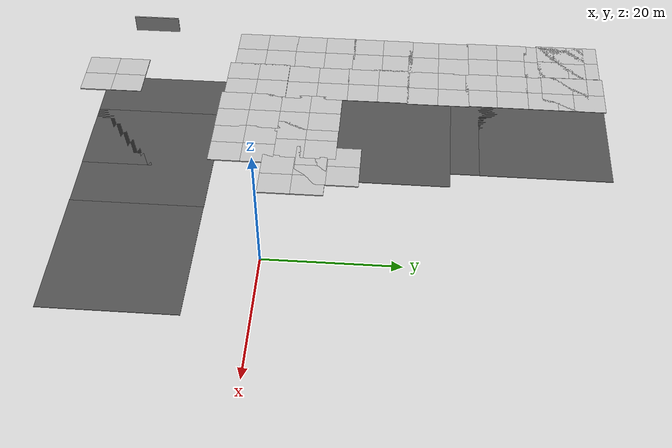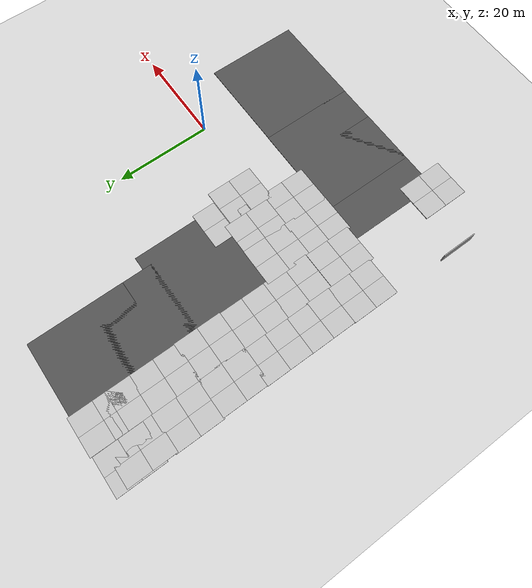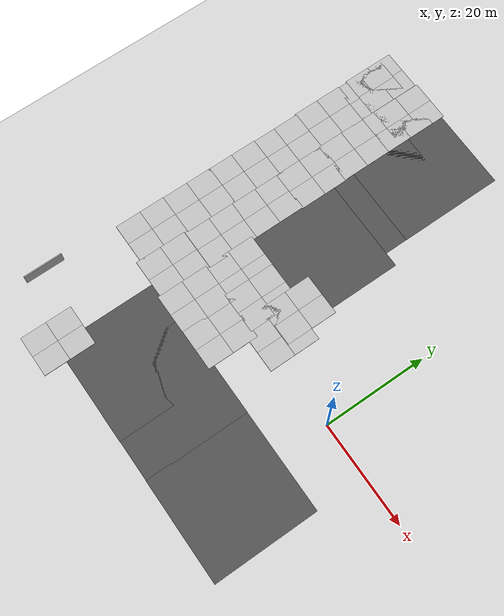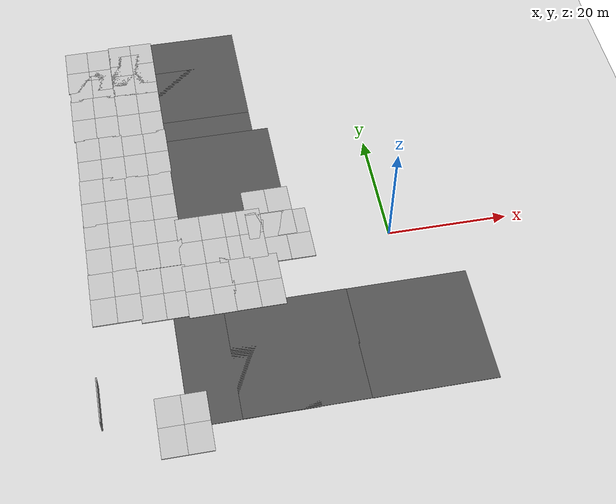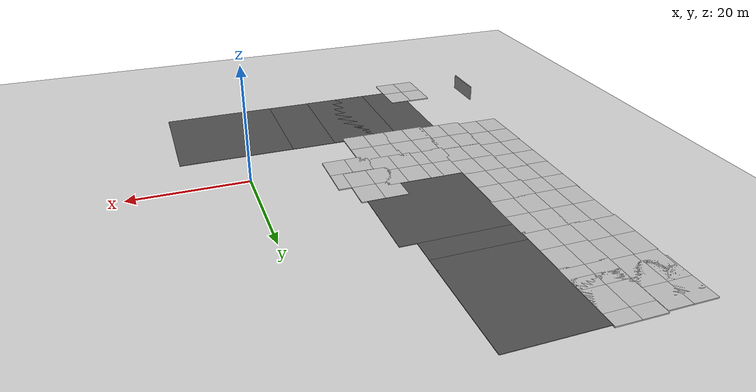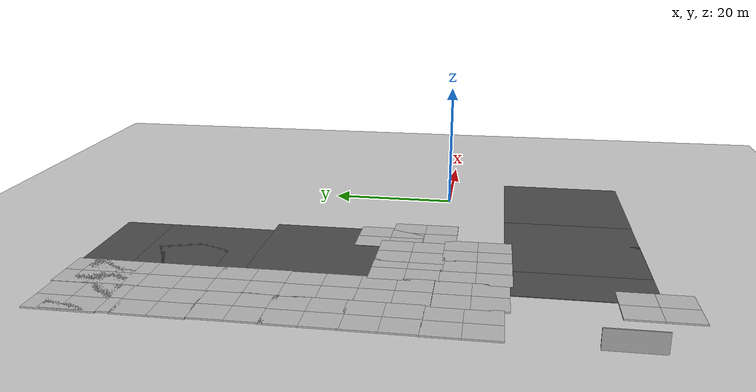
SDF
<sdf version="1.6">
 <world name="default">
  <model name="ground_plane">
   <static>1</static>
   <link name="link">
    <collision name="collision">
     <geometry><plane><normal>0 0 1</normal><size>100 100</size></plane></geometry>
     <surface><friction><ode><mu>100</mu><mu2>50</mu2></ode></friction></surface>
    </collision>
    <visual name="visual">
     <cast_shadows>0</cast_shadows>
     <geometry><plane><normal>0 0 1</normal><size>100 100</size></plane></geometry>
     <material>
      <script><uri>file://media/materials/scripts/gazebo.material</uri><name>Gazebo/Grey</name></script>
     </material>
    </visual>
   </link>
  </model>
  <model name="asphalt_plane">
   <static>1</static>
   <link name="link">
    <collision name="collision"><geometry><box><size>20 20 0.1</size></box></geometry></collision>
    <visual name="visual">
     <cast_shadows>0</cast_shadows>
     <geometry><box><size>20 20 0.1</size></box></geometry>
     <material>
      <script>
       <uri>model://asphalt_plane/materials/scripts</uri>
       <uri>model://asphalt_plane/materials/textures</uri>
       <name>vrc/asphalt</name>
      </script>
     </material>
    </visual>
   </link>
   <pose>0.46329 -19.4958 0 0 -0 0</pose>
  </model>
  <model name="asphalt_plane_0">
   <static>1</static>
   <link name="link">
    <collision name="collision"><geometry><box><size>20 20 0.1</size></box></geometry></collision>
    <visual name="visual">
     <cast_shadows>0</cast_shadows>
     <geometry><box><size>20 20 0.1</size></box></geometry>
     <material>
      <script>
       <uri>model://asphalt_plane/materials/scripts</uri>
       <uri>model://asphalt_plane/materials/textures</uri>
       <name>vrc/asphalt</name>
      </script>
     </material>
    </visual>
   </link>
   <pose>-19.3509 -19.4595 0 0 -0 0</pose>
  </model>
  <model name="asphalt_plane_2">
   <static>1</static>
   <link name="link">
    <collision name="collision"><geometry><box><size>20 20 0.1</size></box></geometry></collision>
    <visual name="visual">
     <cast_shadows>0</cast_shadows>
     <geometry><box><size>20 20 0.1</size></box></geometry>
     <material>
      <script>
       <uri>model://asphalt_plane/materials/scripts</uri>
       <uri>model://asphalt_plane/materials/textures</uri>
       <name>vrc/asphalt</name>
      </script>
     </material>
    </visual>
   </link>
   <pose>-27.35 -19.5085 0 0 -0 0</pose>
  </model>
  <model name="mud_box_2_clone_7">
   <static>1</static>
   <link name="link">
    <collision name="collision"><geometry><box><size>8 10 0.2</size></box></geometry></collision>
    <visual name="visual_1">
     <pose>-2 2.5 0 0 -0 0</pose>
     <cast_shadows>0</cast_shadows>
     <geometry><box><size>4 5 0.2</size></box></geometry>
     <material>
      <script>
       <uri>model://mud_box/materials/scripts</uri>
       <uri>model://mud_box/materials/textures</uri>
       <name>vrc/mud</name>
      </script>
     </material>
    </visual>
    <visual name="visual_2">
     <pose>2 2.5 0 0 -0 0</pose>
     <cast_shadows>0</cast_shadows>
     <geometry><box><size>4 5 0.2</size></box></geometry>
     <material>
      <script>
       <uri>model://mud_box/materials/scripts</uri>
       <uri>model://mud_box/materials/textures</uri>
       <name>vrc/mud</name>
      </script>
     </material>
    </visual>
    <visual name="visual_3">
     <pose>2 -2.5 0 0 -0 0</pose>
     <cast_shadows>0</cast_shadows>
     <geometry><box><size>4 5 0.2</size></box></geometry>
     <material>
      <script>
       <uri>model://mud_box/materials/scripts</uri>
       <uri>model://mud_box/materials/textures</uri>
       <name>vrc/mud</name>
      </script>
     </material>
    </visual>
    <visual name="visual_4">
     <pose>-2 -2.5 0 0 -0 0</pose>
     <cast_shadows>0</cast_shadows>
     <geometry><box><size>4 5 0.2</size></box></geometry>
     <material>
      <script>
       <uri>model://mud_box/materials/scripts</uri>
       <uri>model://mud_box/materials/textures</uri>
       <name>vrc/mud</name>
      </script>
     </material>
    </visual>
   </link>
   <pose>-38.0475 -28.7942 0 0 -0 0</pose>
  </model>
  <model name="mud_box_2_clone_16">
   <static>1</static>
   <link name="link">
    <collision name="collision"><geometry><box><size>8 10 0.2</size></box></geometry></collision>
    <visual name="visual_1">
     <pose>-2 2.5 0 0 -0 0</pose>
     <cast_shadows>0</cast_shadows>
     <geometry><box><size>4 5 0.2</size></box></geometry>
     <material>
      <script>
       <uri>model://mud_box/materials/scripts</uri>
       <uri>model://mud_box/materials/textures</uri>
       <name>vrc/mud</name>
      </script>
     </material>
    </visual>
    <visual name="visual_2">
     <pose>2 2.5 0 0 -0 0</pose>
     <cast_shadows>0</cast_shadows>
     <geometry><box><size>4 5 0.2</size></box></geometry>
     <material>
      <script>
       <uri>model://mud_box/materials/scripts</uri>
       <uri>model://mud_box/materials/textures</uri>
       <name>vrc/mud</name>
      </script>
     </material>
    </visual>
    <visual name="visual_3">
     <pose>2 -2.5 0 0 -0 0</pose>
     <cast_shadows>0</cast_shadows>
     <geometry><box><size>4 5 0.2</size></box></geometry>
     <material>
      <script>
       <uri>model://mud_box/materials/scripts</uri>
       <uri>model://mud_box/materials/textures</uri>
       <name>vrc/mud</name>
      </script>
     </material>
    </visual>
    <visual name="visual_4">
     <pose>-2 -2.5 0 0 -0 0</pose>
     <cast_shadows>0</cast_shadows>
     <geometry><box><size>4 5 0.2</size></box></geometry>
     <material>
      <script>
       <uri>model://mud_box/materials/scripts</uri>
       <uri>model://mud_box/materials/textures</uri>
       <name>vrc/mud</name>
      </script>
     </material>
    </visual>
   </link>
   <pose>-23.1666 -5.5652 0 0 -0 0</pose>
  </model>
  <model name="mud_box_5">
   <static>1</static>
   <link name="link">
    <collision name="collision"><geometry><box><size>8 10 0.2</size></box></geometry></collision>
    <visual name="visual_1">
     <pose>-2 2.5 0 0 -0 0</pose>
     <cast_shadows>0</cast_shadows>
     <geometry><box><size>4 5 0.2</size></box></geometry>
     <material>
      <script>
       <uri>model://mud_box/materials/scripts</uri>
       <uri>model://mud_box/materials/textures</uri>
       <name>vrc/mud</name>
      </script>
     </material>
    </visual>
    <visual name="visual_2">
     <pose>2 2.5 0 0 -0 0</pose>
     <cast_shadows>0</cast_shadows>
     <geometry><box><size>4 5 0.2</size></box></geometry>
     <material>
      <script>
       <uri>model://mud_box/materials/scripts</uri>
       <uri>model://mud_box/materials/textures</uri>
       <name>vrc/mud</name>
      </script>
     </material>
    </visual>
    <visual name="visual_3">
     <pose>2 -2.5 0 0 -0 0</pose>
     <cast_shadows>0</cast_shadows>
     <geometry><box><size>4 5 0.2</size></box></geometry>
     <material>
      <script>
       <uri>model://mud_box/materials/scripts</uri>
       <uri>model://mud_box/materials/textures</uri>
       <name>vrc/mud</name>
      </script>
     </material>
    </visual>
    <visual name="visual_4">
     <pose>-2 -2.5 0 0 -0 0</pose>
     <cast_shadows>0</cast_shadows>
     <geometry><box><size>4 5 0.2</size></box></geometry>
     <material>
      <script>
       <uri>model://mud_box/materials/scripts</uri>
       <uri>model://mud_box/materials/textures</uri>
       <name>vrc/mud</name>
      </script>
     </material>
    </visual>
   </link>
   <pose>-30.8349 -5.5936 0 0 -0 0</pose>
  </model>
  <model name="mud_box_5_clone">
   <static>1</static>
   <link name="link">
    <collision name="collision"><geometry><box><size>8 10 0.2</size></box></geometry></collision>
    <visual name="visual_1">
     <pose>-2 2.5 0 0 -0 0</pose>
     <cast_shadows>0</cast_shadows>
     <geometry><box><size>4 5 0.2</size></box></geometry>
     <material>
      <script>
       <uri>model://mud_box/materials/scripts</uri>
       <uri>model://mud_box/materials/textures</uri>
       <name>vrc/mud</name>
      </script>
     </material>
    </visual>
    <visual name="visual_2">
     <pose>2 2.5 0 0 -0 0</pose>
     <cast_shadows>0</cast_shadows>
     <geometry><box><size>4 5 0.2</size></box></geometry>
     <material>
      <script>
       <uri>model://mud_box/materials/scripts</uri>
       <uri>model://mud_box/materials/textures</uri>
       <name>vrc/mud</name>
      </script>
     </material>
    </visual>
    <visual name="visual_3">
     <pose>2 -2.5 0 0 -0 0</pose>
     <cast_shadows>0</cast_shadows>
     <geometry><box><size>4 5 0.2</size></box></geometry>
     <material>
      <script>
       <uri>model://mud_box/materials/scripts</uri>
       <uri>model://mud_box/materials/textures</uri>
       <name>vrc/mud</name>
      </script>
     </material>
    </visual>
    <visual name="visual_4">
     <pose>-2 -2.5 0 0 -0 0</pose>
     <cast_shadows>0</cast_shadows>
     <geometry><box><size>4 5 0.2</size></box></geometry>
     <material>
      <script>
       <uri>model://mud_box/materials/scripts</uri>
       <uri>model://mud_box/materials/textures</uri>
       <name>vrc/mud</name>
      </script>
     </material>
    </visual>
   </link>
   <pose>-38.3325 -5.17466 0 0 -0 0</pose>
  </model>
  <model name="mud_box_5_clone_0">
   <static>1</static>
   <link name="link">
    <collision name="collision"><geometry><box><size>8 10 0.2</size></box></geometry></collision>
    <visual name="visual_1">
     <pose>-2 2.5 0 0 -0 0</pose>
     <cast_shadows>0</cast_shadows>
     <geometry><box><size>4 5 0.2</size></box></geometry>
     <material>
      <script>
       <uri>model://mud_box/materials/scripts</uri>
       <uri>model://mud_box/materials/textures</uri>
       <name>vrc/mud</name>
      </script>
     </material>
    </visual>
    <visual name="visual_2">
     <pose>2 2.5 0 0 -0 0</pose>
     <cast_shadows>0</cast_shadows>
     <geometry><box><size>4 5 0.2</size></box></geometry>
     <material>
      <script>
       <uri>model://mud_box/materials/scripts</uri>
       <uri>model://mud_box/materials/textures</uri>
       <name>vrc/mud</name>
      </script>
     </material>
    </visual>
    <visual name="visual_3">
     <pose>2 -2.5 0 0 -0 0</pose>
     <cast_shadows>0</cast_shadows>
     <geometry><box><size>4 5 0.2</size></box></geometry>
     <material>
      <script>
       <uri>model://mud_box/materials/scripts</uri>
       <uri>model://mud_box/materials/textures</uri>
       <name>vrc/mud</name>
      </script>
     </material>
    </visual>
    <visual name="visual_4">
     <pose>-2 -2.5 0 0 -0 0</pose>
     <cast_shadows>0</cast_shadows>
     <geometry><box><size>4 5 0.2</size></box></geometry>
     <material>
      <script>
       <uri>model://mud_box/materials/scripts</uri>
       <uri>model://mud_box/materials/textures</uri>
       <name>vrc/mud</name>
      </script>
     </material>
    </visual>
   </link>
   <pose>-46.0429 -4.43965 0 0 -0 0</pose>
  </model>
  <model name="mud_box_5_clone_1">
   <static>1</static>
   <link name="link">
    <collision name="collision"><geometry><box><size>8 10 0.2</size></box></geometry></collision>
    <visual name="visual_1">
     <pose>-2 2.5 0 0 -0 0</pose>
     <cast_shadows>0</cast_shadows>
     <geometry><box><size>4 5 0.2</size></box></geometry>
     <material>
      <script>
       <uri>model://mud_box/materials/scripts</uri>
       <uri>model://mud_box/materials/textures</uri>
       <name>vrc/mud</name>
      </script>
     </material>
    </visual>
    <visual name="visual_2">
     <pose>2 2.5 0 0 -0 0</pose>
     <cast_shadows>0</cast_shadows>
     <geometry><box><size>4 5 0.2</size></box></geometry>
     <material>
      <script>
       <uri>model://mud_box/materials/scripts</uri>
       <uri>model://mud_box/materials/textures</uri>
       <name>vrc/mud</name>
      </script>
     </material>
    </visual>
    <visual name="visual_3">
     <pose>2 -2.5 0 0 -0 0</pose>
     <cast_shadows>0</cast_shadows>
     <geometry><box><size>4 5 0.2</size></box></geometry>
     <material>
      <script>
       <uri>model://mud_box/materials/scripts</uri>
       <uri>model://mud_box/materials/textures</uri>
       <name>vrc/mud</name>
      </script>
     </material>
    </visual>
    <visual name="visual_4">
     <pose>-2 -2.5 0 0 -0 0</pose>
     <cast_shadows>0</cast_shadows>
     <geometry><box><size>4 5 0.2</size></box></geometry>
     <material>
      <script>
       <uri>model://mud_box/materials/scripts</uri>
       <uri>model://mud_box/materials/textures</uri>
       <name>vrc/mud</name>
      </script>
     </material>
    </visual>
   </link>
   <pose>-45.9576 5.44414 0 0 -0 0</pose>
  </model>
  <model name="mud_box_5_clone_2">
   <static>1</static>
   <link name="link">
    <collision name="collision"><geometry><box><size>8 10 0.2</size></box></geometry></collision>
    <visual name="visual_1">
     <pose>-2 2.5 0 0 -0 0</pose>
     <cast_shadows>0</cast_shadows>
     <geometry><box><size>4 5 0.2</size></box></geometry>
     <material>
      <script>
       <uri>model://mud_box/materials/scripts</uri>
       <uri>model://mud_box/materials/textures</uri>
       <name>vrc/mud</name>
      </script>
     </material>
    </visual>
    <visual name="visual_2">
     <pose>2 2.5 0 0 -0 0</pose>
     <cast_shadows>0</cast_shadows>
     <geometry><box><size>4 5 0.2</size></box></geometry>
     <material>
      <script>
       <uri>model://mud_box/materials/scripts</uri>
       <uri>model://mud_box/materials/textures</uri>
       <name>vrc/mud</name>
      </script>
     </material>
    </visual>
    <visual name="visual_3">
     <pose>2 -2.5 0 0 -0 0</pose>
     <cast_shadows>0</cast_shadows>
     <geometry><box><size>4 5 0.2</size></box></geometry>
     <material>
      <script>
       <uri>model://mud_box/materials/scripts</uri>
       <uri>model://mud_box/materials/textures</uri>
       <name>vrc/mud</name>
      </script>
     </material>
    </visual>
    <visual name="visual_4">
     <pose>-2 -2.5 0 0 -0 0</pose>
     <cast_shadows>0</cast_shadows>
     <geometry><box><size>4 5 0.2</size></box></geometry>
     <material>
      <script>
       <uri>model://mud_box/materials/scripts</uri>
       <uri>model://mud_box/materials/textures</uri>
       <name>vrc/mud</name>
      </script>
     </material>
    </visual>
   </link>
   <pose>-38.1608 4.8659 0 0 -0 0</pose>
  </model>
  <model name="mud_box_5_clone_3">
   <static>1</static>
   <link name="link">
    <collision name="collision"><geometry><box><size>8 10 0.2</size></box></geometry></collision>
    <visual name="visual_1">
     <pose>-2 2.5 0 0 -0 0</pose>
     <cast_shadows>0</cast_shadows>
     <geometry><box><size>4 5 0.2</size></box></geometry>
     <material>
      <script>
       <uri>model://mud_box/materials/scripts</uri>
       <uri>model://mud_box/materials/textures</uri>
       <name>vrc/mud</name>
      </script>
     </material>
    </visual>
    <visual name="visual_2">
     <pose>2 2.5 0 0 -0 0</pose>
     <cast_shadows>0</cast_shadows>
     <geometry><box><size>4 5 0.2</size></box></geometry>
     <material>
      <script>
       <uri>model://mud_box/materials/scripts</uri>
       <uri>model://mud_box/materials/textures</uri>
       <name>vrc/mud</name>
      </script>
     </material>
    </visual>
    <visual name="visual_3">
     <pose>2 -2.5 0 0 -0 0</pose>
     <cast_shadows>0</cast_shadows>
     <geometry><box><size>4 5 0.2</size></box></geometry>
     <material>
      <script>
       <uri>model://mud_box/materials/scripts</uri>
       <uri>model://mud_box/materials/textures</uri>
       <name>vrc/mud</name>
      </script>
     </material>
    </visual>
    <visual name="visual_4">
     <pose>-2 -2.5 0 0 -0 0</pose>
     <cast_shadows>0</cast_shadows>
     <geometry><box><size>4 5 0.2</size></box></geometry>
     <material>
      <script>
       <uri>model://mud_box/materials/scripts</uri>
       <uri>model://mud_box/materials/textures</uri>
       <name>vrc/mud</name>
      </script>
     </material>
    </visual>
   </link>
   <pose>-30.8215 4.10783 0 0 -0 0</pose>
  </model>
  <model name="mud_box_5_clone_4">
   <static>1</static>
   <link name="link">
    <collision name="collision"><geometry><box><size>8 10 0.2</size></box></geometry></collision>
    <visual name="visual_1">
     <pose>-2 2.5 0 0 -0 0</pose>
     <cast_shadows>0</cast_shadows>
     <geometry><box><size>4 5 0.2</size></box></geometry>
     <material>
      <script>
       <uri>model://mud_box/materials/scripts</uri>
       <uri>model://mud_box/materials/textures</uri>
       <name>vrc/mud</name>
      </script>
     </material>
    </visual>
    <visual name="visual_2">
     <pose>2 2.5 0 0 -0 0</pose>
     <cast_shadows>0</cast_shadows>
     <geometry><box><size>4 5 0.2</size></box></geometry>
     <material>
      <script>
       <uri>model://mud_box/materials/scripts</uri>
       <uri>model://mud_box/materials/textures</uri>
       <name>vrc/mud</name>
      </script>
     </material>
    </visual>
    <visual name="visual_3">
     <pose>2 -2.5 0 0 -0 0</pose>
     <cast_shadows>0</cast_shadows>
     <geometry><box><size>4 5 0.2</size></box></geometry>
     <material>
      <script>
       <uri>model://mud_box/materials/scripts</uri>
       <uri>model://mud_box/materials/textures</uri>
       <name>vrc/mud</name>
      </script>
     </material>
    </visual>
    <visual name="visual_4">
     <pose>-2 -2.5 0 0 -0 0</pose>
     <cast_shadows>0</cast_shadows>
     <geometry><box><size>4 5 0.2</size></box></geometry>
     <material>
      <script>
       <uri>model://mud_box/materials/scripts</uri>
       <uri>model://mud_box/materials/textures</uri>
       <name>vrc/mud</name>
      </script>
     </material>
    </visual>
   </link>
   <pose>-24.5157 4.05379 0 0 -0 0</pose>
  </model>
  <model name="mud_box_5_clone_1_clone">
   <static>1</static>
   <link name="link">
    <collision name="collision"><geometry><box><size>8 10 0.2</size></box></geometry></collision>
    <visual name="visual_1">
     <pose>-2 2.5 0 0 -0 0</pose>
     <cast_shadows>0</cast_shadows>
     <geometry><box><size>4 5 0.2</size></box></geometry>
     <material>
      <script>
       <uri>model://mud_box/materials/scripts</uri>
       <uri>model://mud_box/materials/textures</uri>
       <name>vrc/mud</name>
      </script>
     </material>
    </visual>
    <visual name="visual_2">
     <pose>2 2.5 0 0 -0 0</pose>
     <cast_shadows>0</cast_shadows>
     <geometry><box><size>4 5 0.2</size></box></geometry>
     <material>
      <script>
       <uri>model://mud_box/materials/scripts</uri>
       <uri>model://mud_box/materials/textures</uri>
       <name>vrc/mud</name>
      </script>
     </material>
    </visual>
    <visual name="visual_3">
     <pose>2 -2.5 0 0 -0 0</pose>
     <cast_shadows>0</cast_shadows>
     <geometry><box><size>4 5 0.2</size></box></geometry>
     <material>
      <script>
       <uri>model://mud_box/materials/scripts</uri>
       <uri>model://mud_box/materials/textures</uri>
       <name>vrc/mud</name>
      </script>
     </material>
    </visual>
    <visual name="visual_4">
     <pose>-2 -2.5 0 0 -0 0</pose>
     <cast_shadows>0</cast_shadows>
     <geometry><box><size>4 5 0.2</size></box></geometry>
     <material>
      <script>
       <uri>model://mud_box/materials/scripts</uri>
       <uri>model://mud_box/materials/textures</uri>
       <name>vrc/mud</name>
      </script>
     </material>
    </visual>
   </link>
   <pose>-45.9289 15.1657 0 0 -0 0</pose>
  </model>
  <model name="mud_box_5_clone_1_clone_0">
   <static>1</static>
   <link name="link">
    <collision name="collision"><geometry><box><size>8 10 0.2</size></box></geometry></collision>
    <visual name="visual_1">
     <pose>-2 2.5 0 0 -0 0</pose>
     <cast_shadows>0</cast_shadows>
     <geometry><box><size>4 5 0.2</size></box></geometry>
     <material>
      <script>
       <uri>model://mud_box/materials/scripts</uri>
       <uri>model://mud_box/materials/textures</uri>
       <name>vrc/mud</name>
      </script>
     </material>
    </visual>
    <visual name="visual_2">
     <pose>2 2.5 0 0 -0 0</pose>
     <cast_shadows>0</cast_shadows>
     <geometry><box><size>4 5 0.2</size></box></geometry>
     <material>
      <script>
       <uri>model://mud_box/materials/scripts</uri>
       <uri>model://mud_box/materials/textures</uri>
       <name>vrc/mud</name>
      </script>
     </material>
    </visual>
    <visual name="visual_3">
     <pose>2 -2.5 0 0 -0 0</pose>
     <cast_shadows>0</cast_shadows>
     <geometry><box><size>4 5 0.2</size></box></geometry>
     <material>
      <script>
       <uri>model://mud_box/materials/scripts</uri>
       <uri>model://mud_box/materials/textures</uri>
       <name>vrc/mud</name>
      </script>
     </material>
    </visual>
    <visual name="visual_4">
     <pose>-2 -2.5 0 0 -0 0</pose>
     <cast_shadows>0</cast_shadows>
     <geometry><box><size>4 5 0.2</size></box></geometry>
     <material>
      <script>
       <uri>model://mud_box/materials/scripts</uri>
       <uri>model://mud_box/materials/textures</uri>
       <name>vrc/mud</name>
      </script>
     </material>
    </visual>
   </link>
   <pose>-38.1705 14.7563 0 0 -0 0</pose>
  </model>
  <model name="mud_box_5_clone_1_clone_1">
   <static>1</static>
   <link name="link">
    <collision name="collision"><geometry><box><size>8 10 0.2</size></box></geometry></collision>
    <visual name="visual_1">
     <pose>-2 2.5 0 0 -0 0</pose>
     <cast_shadows>0</cast_shadows>
     <geometry><box><size>4 5 0.2</size></box></geometry>
     <material>
      <script>
       <uri>model://mud_box/materials/scripts</uri>
       <uri>model://mud_box/materials/textures</uri>
       <name>vrc/mud</name>
      </script>
     </material>
    </visual>
    <visual name="visual_2">
     <pose>2 2.5 0 0 -0 0</pose>
     <cast_shadows>0</cast_shadows>
     <geometry><box><size>4 5 0.2</size></box></geometry>
     <material>
      <script>
       <uri>model://mud_box/materials/scripts</uri>
       <uri>model://mud_box/materials/textures</uri>
       <name>vrc/mud</name>
      </script>
     </material>
    </visual>
    <visual name="visual_3">
     <pose>2 -2.5 0 0 -0 0</pose>
     <cast_shadows>0</cast_shadows>
     <geometry><box><size>4 5 0.2</size></box></geometry>
     <material>
      <script>
       <uri>model://mud_box/materials/scripts</uri>
       <uri>model://mud_box/materials/textures</uri>
       <name>vrc/mud</name>
      </script>
     </material>
    </visual>
    <visual name="visual_4">
     <pose>-2 -2.5 0 0 -0 0</pose>
     <cast_shadows>0</cast_shadows>
     <geometry><box><size>4 5 0.2</size></box></geometry>
     <material>
      <script>
       <uri>model://mud_box/materials/scripts</uri>
       <uri>model://mud_box/materials/textures</uri>
       <name>vrc/mud</name>
      </script>
     </material>
    </visual>
   </link>
   <pose>-38.0105 24.5085 0 0 -0 0</pose>
  </model>
  <model name="mud_box_5_clone_1_clone_2">
   <static>1</static>
   <link name="link">
    <collision name="collision"><geometry><box><size>8 10 0.2</size></box></geometry></collision>
    <visual name="visual_1">
     <pose>-2 2.5 0 0 -0 0</pose>
     <cast_shadows>0</cast_shadows>
     <geometry><box><size>4 5 0.2</size></box></geometry>
     <material>
      <script>
       <uri>model://mud_box/materials/scripts</uri>
       <uri>model://mud_box/materials/textures</uri>
       <name>vrc/mud</name>
      </script>
     </material>
    </visual>
    <visual name="visual_2">
     <pose>2 2.5 0 0 -0 0</pose>
     <cast_shadows>0</cast_shadows>
     <geometry><box><size>4 5 0.2</size></box></geometry>
     <material>
      <script>
       <uri>model://mud_box/materials/scripts</uri>
       <uri>model://mud_box/materials/textures</uri>
       <name>vrc/mud</name>
      </script>
     </material>
    </visual>
    <visual name="visual_3">
     <pose>2 -2.5 0 0 -0 0</pose>
     <cast_shadows>0</cast_shadows>
     <geometry><box><size>4 5 0.2</size></box></geometry>
     <material>
      <script>
       <uri>model://mud_box/materials/scripts</uri>
       <uri>model://mud_box/materials/textures</uri>
       <name>vrc/mud</name>
      </script>
     </material>
    </visual>
    <visual name="visual_4">
     <pose>-2 -2.5 0 0 -0 0</pose>
     <cast_shadows>0</cast_shadows>
     <geometry><box><size>4 5 0.2</size></box></geometry>
     <material>
      <script>
       <uri>model://mud_box/materials/scripts</uri>
       <uri>model://mud_box/materials/textures</uri>
       <name>vrc/mud</name>
      </script>
     </material>
    </visual>
   </link>
   <pose>-45.8143 24.5123 0 0 -0 0</pose>
  </model>
  <model name="mud_box_5_clone_1_clone_3">
   <static>1</static>
   <link name="link">
    <collision name="collision"><geometry><box><size>8 10 0.2</size></box></geometry></collision>
    <visual name="visual_1">
     <pose>-2 2.5 0 0 -0 0</pose>
     <cast_shadows>0</cast_shadows>
     <geometry><box><size>4 5 0.2</size></box></geometry>
     <material>
      <script>
       <uri>model://mud_box/materials/scripts</uri>
       <uri>model://mud_box/materials/textures</uri>
       <name>vrc/mud</name>
      </script>
     </material>
    </visual>
    <visual name="visual_2">
     <pose>2 2.5 0 0 -0 0</pose>
     <cast_shadows>0</cast_shadows>
     <geometry><box><size>4 5 0.2</size></box></geometry>
     <material>
      <script>
       <uri>model://mud_box/materials/scripts</uri>
       <uri>model://mud_box/materials/textures</uri>
       <name>vrc/mud</name>
      </script>
     </material>
    </visual>
    <visual name="visual_3">
     <pose>2 -2.5 0 0 -0 0</pose>
     <cast_shadows>0</cast_shadows>
     <geometry><box><size>4 5 0.2</size></box></geometry>
     <material>
      <script>
       <uri>model://mud_box/materials/scripts</uri>
       <uri>model://mud_box/materials/textures</uri>
       <name>vrc/mud</name>
      </script>
     </material>
    </visual>
    <visual name="visual_4">
     <pose>-2 -2.5 0 0 -0 0</pose>
     <cast_shadows>0</cast_shadows>
     <geometry><box><size>4 5 0.2</size></box></geometry>
     <material>
      <script>
       <uri>model://mud_box/materials/scripts</uri>
       <uri>model://mud_box/materials/textures</uri>
       <name>vrc/mud</name>
      </script>
     </material>
    </visual>
   </link>
   <pose>-46.0438 34.2972 0 0 -0 0</pose>
  </model>
  <model name="mud_box_5_clone_1_clone_4">
   <static>1</static>
   <link name="link">
    <collision name="collision"><geometry><box><size>8 10 0.2</size></box></geometry></collision>
    <visual name="visual_1">
     <pose>-2 2.5 0 0 -0 0</pose>
     <cast_shadows>0</cast_shadows>
     <geometry><box><size>4 5 0.2</size></box></geometry>
     <material>
      <script>
       <uri>model://mud_box/materials/scripts</uri>
       <uri>model://mud_box/materials/textures</uri>
       <name>vrc/mud</name>
      </script>
     </material>
    </visual>
    <visual name="visual_2">
     <pose>2 2.5 0 0 -0 0</pose>
     <cast_shadows>0</cast_shadows>
     <geometry><box><size>4 5 0.2</size></box></geometry>
     <material>
      <script>
       <uri>model://mud_box/materials/scripts</uri>
       <uri>model://mud_box/materials/textures</uri>
       <name>vrc/mud</name>
      </script>
     </material>
    </visual>
    <visual name="visual_3">
     <pose>2 -2.5 0 0 -0 0</pose>
     <cast_shadows>0</cast_shadows>
     <geometry><box><size>4 5 0.2</size></box></geometry>
     <material>
      <script>
       <uri>model://mud_box/materials/scripts</uri>
       <uri>model://mud_box/materials/textures</uri>
       <name>vrc/mud</name>
      </script>
     </material>
    </visual>
    <visual name="visual_4">
     <pose>-2 -2.5 0 0 -0 0</pose>
     <cast_shadows>0</cast_shadows>
     <geometry><box><size>4 5 0.2</size></box></geometry>
     <material>
      <script>
       <uri>model://mud_box/materials/scripts</uri>
       <uri>model://mud_box/materials/textures</uri>
       <name>vrc/mud</name>
      </script>
     </material>
    </visual>
   </link>
   <pose>-38.1404 34.0458 0 0 -0 0</pose>
  </model>
  <model name="mud_box_5_clone_1_clone_5">
   <static>1</static>
   <link name="link">
    <collision name="collision"><geometry><box><size>8 10 0.2</size></box></geometry></collision>
    <visual name="visual_1">
     <pose>-2 2.5 0 0 -0 0</pose>
     <cast_shadows>0</cast_shadows>
     <geometry><box><size>4 5 0.2</size></box></geometry>
     <material>
      <script>
       <uri>model://mud_box/materials/scripts</uri>
       <uri>model://mud_box/materials/textures</uri>
       <name>vrc/mud</name>
      </script>
     </material>
    </visual>
    <visual name="visual_2">
     <pose>2 2.5 0 0 -0 0</pose>
     <cast_shadows>0</cast_shadows>
     <geometry><box><size>4 5 0.2</size></box></geometry>
     <material>
      <script>
       <uri>model://mud_box/materials/scripts</uri>
       <uri>model://mud_box/materials/textures</uri>
       <name>vrc/mud</name>
      </script>
     </material>
    </visual>
    <visual name="visual_3">
     <pose>2 -2.5 0 0 -0 0</pose>
     <cast_shadows>0</cast_shadows>
     <geometry><box><size>4 5 0.2</size></box></geometry>
     <material>
      <script>
       <uri>model://mud_box/materials/scripts</uri>
       <uri>model://mud_box/materials/textures</uri>
       <name>vrc/mud</name>
      </script>
     </material>
    </visual>
    <visual name="visual_4">
     <pose>-2 -2.5 0 0 -0 0</pose>
     <cast_shadows>0</cast_shadows>
     <geometry><box><size>4 5 0.2</size></box></geometry>
     <material>
      <script>
       <uri>model://mud_box/materials/scripts</uri>
       <uri>model://mud_box/materials/textures</uri>
       <name>vrc/mud</name>
      </script>
     </material>
    </visual>
   </link>
   <pose>-38.1282 43.8196 0 0 -0 0</pose>
  </model>
  <model name="mud_box_5_clone_1_clone_6">
   <static>1</static>
   <link name="link">
    <collision name="collision"><geometry><box><size>8 10 0.2</size></box></geometry></collision>
    <visual name="visual_1">
     <pose>-2 2.5 0 0 -0 0</pose>
     <cast_shadows>0</cast_shadows>
     <geometry><box><size>4 5 0.2</size></box></geometry>
     <material>
      <script>
       <uri>model://mud_box/materials/scripts</uri>
       <uri>model://mud_box/materials/textures</uri>
       <name>vrc/mud</name>
      </script>
     </material>
    </visual>
    <visual name="visual_2">
     <pose>2 2.5 0 0 -0 0</pose>
     <cast_shadows>0</cast_shadows>
     <geometry><box><size>4 5 0.2</size></box></geometry>
     <material>
      <script>
       <uri>model://mud_box/materials/scripts</uri>
       <uri>model://mud_box/materials/textures</uri>
       <name>vrc/mud</name>
      </script>
     </material>
    </visual>
    <visual name="visual_3">
     <pose>2 -2.5 0 0 -0 0</pose>
     <cast_shadows>0</cast_shadows>
     <geometry><box><size>4 5 0.2</size></box></geometry>
     <material>
      <script>
       <uri>model://mud_box/materials/scripts</uri>
       <uri>model://mud_box/materials/textures</uri>
       <name>vrc/mud</name>
      </script>
     </material>
    </visual>
    <visual name="visual_4">
     <pose>-2 -2.5 0 0 -0 0</pose>
     <cast_shadows>0</cast_shadows>
     <geometry><box><size>4 5 0.2</size></box></geometry>
     <material>
      <script>
       <uri>model://mud_box/materials/scripts</uri>
       <uri>model://mud_box/materials/textures</uri>
       <name>vrc/mud</name>
      </script>
     </material>
    </visual>
   </link>
   <pose>-45.8976 43.8224 0 0 -0 0</pose>
  </model>
  <model name="mud_box_5_clone_1_clone_7">
   <static>1</static>
   <link name="link">
    <collision name="collision"><geometry><box><size>8 10 0.2</size></box></geometry></collision>
    <visual name="visual_1">
     <pose>-2 2.5 0 0 -0 0</pose>
     <cast_shadows>0</cast_shadows>
     <geometry><box><size>4 5 0.2</size></box></geometry>
     <material>
      <script>
       <uri>model://mud_box/materials/scripts</uri>
       <uri>model://mud_box/materials/textures</uri>
       <name>vrc/mud</name>
      </script>
     </material>
    </visual>
    <visual name="visual_2">
     <pose>2 2.5 0 0 -0 0</pose>
     <cast_shadows>0</cast_shadows>
     <geometry><box><size>4 5 0.2</size></box></geometry>
     <material>
      <script>
       <uri>model://mud_box/materials/scripts</uri>
       <uri>model://mud_box/materials/textures</uri>
       <name>vrc/mud</name>
      </script>
     </material>
    </visual>
    <visual name="visual_3">
     <pose>2 -2.5 0 0 -0 0</pose>
     <cast_shadows>0</cast_shadows>
     <geometry><box><size>4 5 0.2</size></box></geometry>
     <material>
      <script>
       <uri>model://mud_box/materials/scripts</uri>
       <uri>model://mud_box/materials/textures</uri>
       <name>vrc/mud</name>
      </script>
     </material>
    </visual>
    <visual name="visual_4">
     <pose>-2 -2.5 0 0 -0 0</pose>
     <cast_shadows>0</cast_shadows>
     <geometry><box><size>4 5 0.2</size></box></geometry>
     <material>
      <script>
       <uri>model://mud_box/materials/scripts</uri>
       <uri>model://mud_box/materials/textures</uri>
       <name>vrc/mud</name>
      </script>
     </material>
    </visual>
   </link>
   <pose>-46.1676 46.0228 0 0 -0 0</pose>
  </model>
  <model name="mud_box_5_clone_1_clone_8">
   <static>1</static>
   <link name="link">
    <collision name="collision"><geometry><box><size>8 10 0.2</size></box></geometry></collision>
    <visual name="visual_1">
     <pose>-2 2.5 0 0 -0 0</pose>
     <cast_shadows>0</cast_shadows>
     <geometry><box><size>4 5 0.2</size></box></geometry>
     <material>
      <script>
       <uri>model://mud_box/materials/scripts</uri>
       <uri>model://mud_box/materials/textures</uri>
       <name>vrc/mud</name>
      </script>
     </material>
    </visual>
    <visual name="visual_2">
     <pose>2 2.5 0 0 -0 0</pose>
     <cast_shadows>0</cast_shadows>
     <geometry><box><size>4 5 0.2</size></box></geometry>
     <material>
      <script>
       <uri>model://mud_box/materials/scripts</uri>
       <uri>model://mud_box/materials/textures</uri>
       <name>vrc/mud</name>
      </script>
     </material>
    </visual>
    <visual name="visual_3">
     <pose>2 -2.5 0 0 -0 0</pose>
     <cast_shadows>0</cast_shadows>
     <geometry><box><size>4 5 0.2</size></box></geometry>
     <material>
      <script>
       <uri>model://mud_box/materials/scripts</uri>
       <uri>model://mud_box/materials/textures</uri>
       <name>vrc/mud</name>
      </script>
     </material>
    </visual>
    <visual name="visual_4">
     <pose>-2 -2.5 0 0 -0 0</pose>
     <cast_shadows>0</cast_shadows>
     <geometry><box><size>4 5 0.2</size></box></geometry>
     <material>
      <script>
       <uri>model://mud_box/materials/scripts</uri>
       <uri>model://mud_box/materials/textures</uri>
       <name>vrc/mud</name>
      </script>
     </material>
    </visual>
   </link>
   <pose>-38.1143 46.3826 0 0 -0 0</pose>
  </model>
  <model name="grey_wall_clone_1_clone_4_clone_clone_0">
   <static>1</static>
   <link name="link">
    <pose>0 0 1.4 0 -0 0</pose>
    <collision name="collision"><geometry><box><size>7.5 0.2 2.8</size></box></geometry></collision>
    <visual name="visual">
     <cast_shadows>0</cast_shadows>
     <geometry><box><size>7.5 0.2 2.8</size></box></geometry>
     <material>
      <script>
       <uri>model://grey_wall/materials/scripts</uri>
       <uri>model://grey_wall/materials/textures</uri>
       <name>vrc/grey_wall</name>
      </script>
     </material>
    </visual>
   </link>
   <pose>-50.102 -23.9012 0 0 0 -1.56928</pose>
  </model>
  <model name="mud_box_5_clone_4_clone">
   <static>1</static>
   <link name="link">
    <collision name="collision"><geometry><box><size>8 10 0.2</size></box></geometry></collision>
    <visual name="visual_1">
     <pose>-2 2.5 0 0 -0 0</pose>
     <cast_shadows>0</cast_shadows>
     <geometry><box><size>4 5 0.2</size></box></geometry>
     <material>
      <script>
       <uri>model://mud_box/materials/scripts</uri>
       <uri>model://mud_box/materials/textures</uri>
       <name>vrc/mud</name>
      </script>
     </material>
    </visual>
    <visual name="visual_2">
     <pose>2 2.5 0 0 -0 0</pose>
     <cast_shadows>0</cast_shadows>
     <geometry><box><size>4 5 0.2</size></box></geometry>
     <material>
      <script>
       <uri>model://mud_box/materials/scripts</uri>
       <uri>model://mud_box/materials/textures</uri>
       <name>vrc/mud</name>
      </script>
     </material>
    </visual>
    <visual name="visual_3">
     <pose>2 -2.5 0 0 -0 0</pose>
     <cast_shadows>0</cast_shadows>
     <geometry><box><size>4 5 0.2</size></box></geometry>
     <material>
      <script>
       <uri>model://mud_box/materials/scripts</uri>
       <uri>model://mud_box/materials/textures</uri>
       <name>vrc/mud</name>
      </script>
     </material>
    </visual>
    <visual name="visual_4">
     <pose>-2 -2.5 0 0 -0 0</pose>
     <cast_shadows>0</cast_shadows>
     <geometry><box><size>4 5 0.2</size></box></geometry>
     <material>
      <script>
       <uri>model://mud_box/materials/scripts</uri>
       <uri>model://mud_box/materials/textures</uri>
       <name>vrc/mud</name>
      </script>
     </material>
    </visual>
   </link>
   <pose>-16.8392 2.7749 0 0 -0 0</pose>
  </model>
  <model name="mud_box_5_clone_4_clone_2">
   <static>1</static>
   <link name="link">
    <collision name="collision"><geometry><box><size>8 10 0.2</size></box></geometry></collision>
    <visual name="visual_1">
     <pose>-2 2.5 0 0 -0 0</pose>
     <cast_shadows>0</cast_shadows>
     <geometry><box><size>4 5 0.2</size></box></geometry>
     <material>
      <script>
       <uri>model://mud_box/materials/scripts</uri>
       <uri>model://mud_box/materials/textures</uri>
       <name>vrc/mud</name>
      </script>
     </material>
    </visual>
    <visual name="visual_2">
     <pose>2 2.5 0 0 -0 0</pose>
     <cast_shadows>0</cast_shadows>
     <geometry><box><size>4 5 0.2</size></box></geometry>
     <material>
      <script>
       <uri>model://mud_box/materials/scripts</uri>
       <uri>model://mud_box/materials/textures</uri>
       <name>vrc/mud</name>
      </script>
     </material>
    </visual>
    <visual name="visual_3">
     <pose>2 -2.5 0 0 -0 0</pose>
     <cast_shadows>0</cast_shadows>
     <geometry><box><size>4 5 0.2</size></box></geometry>
     <material>
      <script>
       <uri>model://mud_box/materials/scripts</uri>
       <uri>model://mud_box/materials/textures</uri>
       <name>vrc/mud</name>
      </script>
     </material>
    </visual>
    <visual name="visual_4">
     <pose>-2 -2.5 0 0 -0 0</pose>
     <cast_shadows>0</cast_shadows>
     <geometry><box><size>4 5 0.2</size></box></geometry>
     <material>
      <script>
       <uri>model://mud_box/materials/scripts</uri>
       <uri>model://mud_box/materials/textures</uri>
       <name>vrc/mud</name>
      </script>
     </material>
    </visual>
   </link>
   <pose>-19.0127 7.89213 0 0 -0 0</pose>
  </model>
  <model name="asphalt_plane_0_clone">
   <static>1</static>
   <link name="link">
    <collision name="collision"><geometry><box><size>20 20 0.1</size></box></geometry></collision>
    <visual name="visual">
     <cast_shadows>0</cast_shadows>
     <geometry><box><size>20 20 0.1</size></box></geometry>
     <material>
      <script>
       <uri>model://asphalt_plane/materials/scripts</uri>
       <uri>model://asphalt_plane/materials/textures</uri>
       <name>vrc/asphalt</name>
      </script>
     </material>
    </visual>
   </link>
   <pose>-25.9708 16.5518 0 0 -0 0</pose>
  </model>
  <model name="asphalt_plane_0_clone_0">
   <static>1</static>
   <link name="link">
    <collision name="collision"><geometry><box><size>20 20 0.1</size></box></geometry></collision>
    <visual name="visual">
     <cast_shadows>0</cast_shadows>
     <geometry><box><size>20 20 0.1</size></box></geometry>
     <material>
      <script>
       <uri>model://asphalt_plane/materials/scripts</uri>
       <uri>model://asphalt_plane/materials/textures</uri>
       <name>vrc/asphalt</name>
      </script>
     </material>
    </visual>
   </link>
   <pose>-28.7027 33.2491 0 0 -0 0</pose>
  </model>
  <model name="asphalt_plane_0_clone_1">
   <static>1</static>
   <link name="link">
    <collision name="collision"><geometry><box><size>20 20 0.1</size></box></geometry></collision>
    <visual name="visual">
     <cast_shadows>0</cast_shadows>
     <geometry><box><size>20 20 0.1</size></box></geometry>
     <material>
      <script>
       <uri>model://asphalt_plane/materials/scripts</uri>
       <uri>model://asphalt_plane/materials/textures</uri>
       <name>vrc/asphalt</name>
      </script>
     </material>
    </visual>
   </link>
   <pose>-28.6779 40.9545 0 0 -0 0</pose>
  </model>
 </world>
</sdf>
